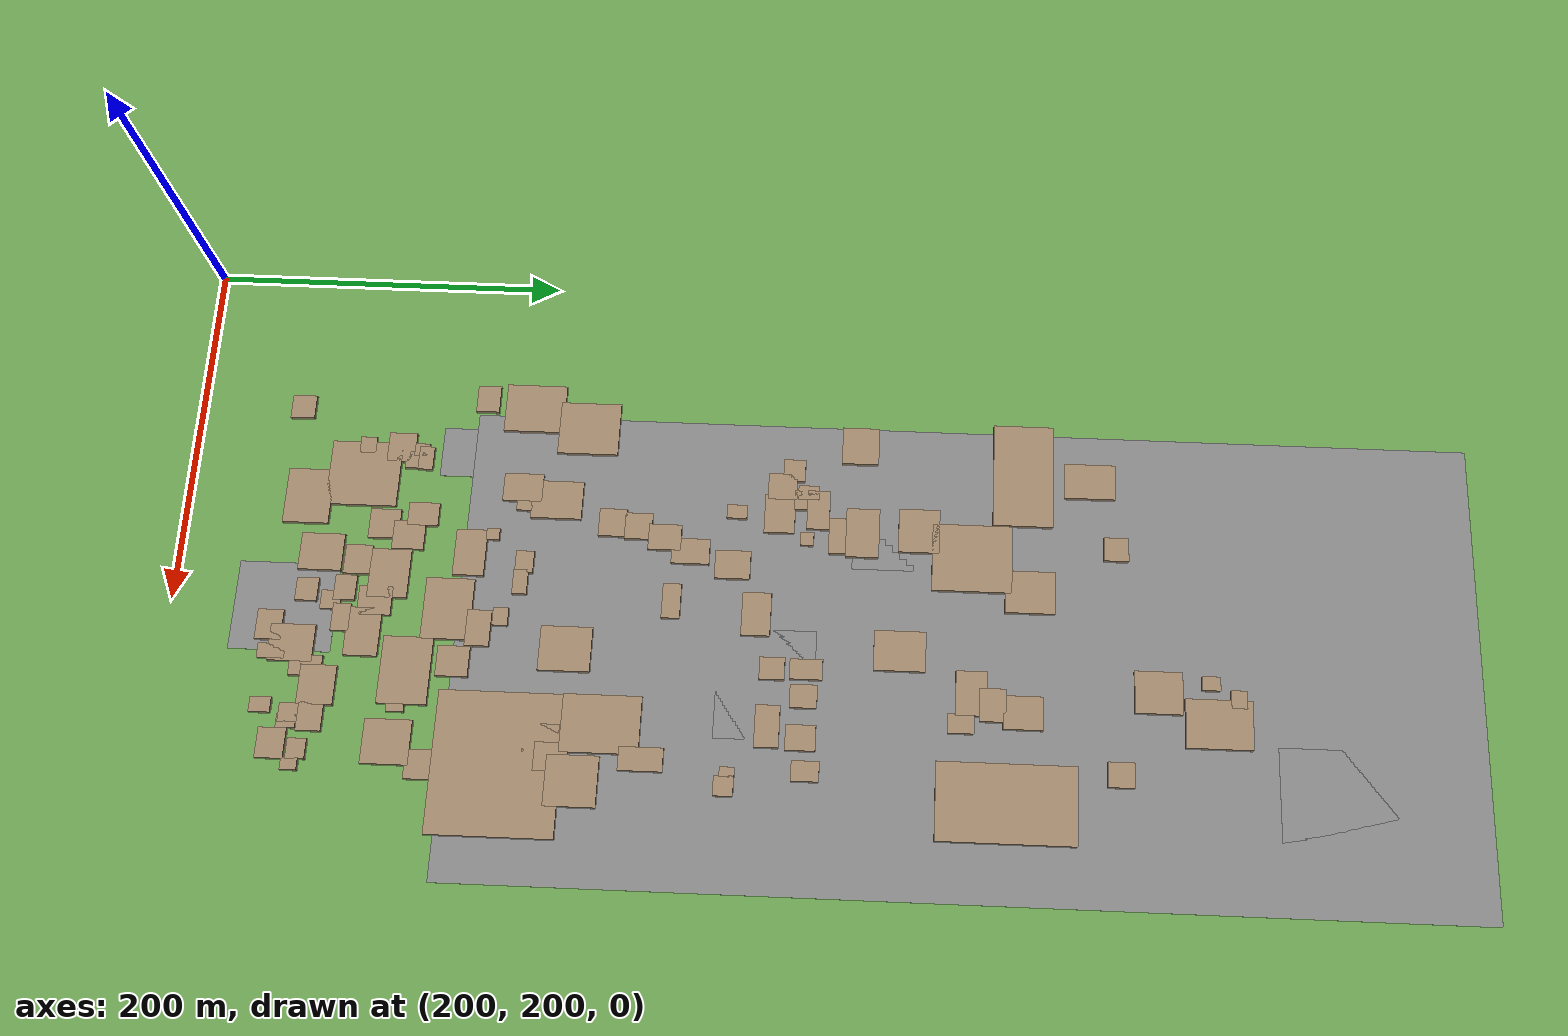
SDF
<sdf version="1.9">
 <world name="kimje_farmland">
  <model name="ground_plane">
   <static>true</static>
   <link name="link">
    <collision name="collision">
     <geometry><plane><normal>0 0 1</normal><size>2000 2000</size></plane></geometry>
    </collision>
    <visual name="visual">
     <geometry><plane><normal>0 0 1</normal><size>2000 2000</size></plane></geometry>
     <material><ambient>0.4 0.6 0.3 1</ambient><diffuse>0.4 0.6 0.3 1</diffuse></material>
    </visual>
   </link>
  </model>
  <model name="osm_12">
   <static>true</static>
   <pose>416.88 645.44 0.040 0 0 0</pose>
   <link name="link">
    <collision name="collision"><geometry><box><size>270.00 569.35 0.080</size></box></geometry></collision>
    <visual name="visual">
     <geometry><box><size>270.00 569.35 0.080</size></box></geometry>
     <material><ambient>0.5 0.5 0.5 1</ambient><diffuse>0.5 0.5 0.5 1</diffuse></material>
    </visual>
   </link>
  </model>
  <model name="osm_26">
   <static>true</static>
   <pose>436.03 534.62 0.040 0 0 0</pose>
   <link name="link">
    <collision name="collision"><geometry><box><size>62.67 54.41 0.080</size></box></geometry></collision>
    <visual name="visual">
     <geometry><box><size>62.67 54.41 0.080</size></box></geometry>
     <material><ambient>0.5 0.5 0.5 1</ambient><diffuse>0.5 0.5 0.5 1</diffuse></material>
    </visual>
   </link>
  </model>
  <model name="osm_31">
   <static>true</static>
   <pose>402.13 263.94 0.040 0 0 0</pose>
   <link name="link">
    <collision name="collision"><geometry><box><size>51.26 57.17 0.080</size></box></geometry></collision>
    <visual name="visual">
     <geometry><box><size>51.26 57.17 0.080</size></box></geometry>
     <material><ambient>0.5 0.5 0.5 1</ambient><diffuse>0.5 0.5 0.5 1</diffuse></material>
    </visual>
   </link>
  </model>
  <model name="osm_67">
   <static>true</static>
   <pose>490.43 868.63 0.040 0 0 0</pose>
   <link name="link">
    <collision name="collision"><geometry><box><size>60.84 105.36 0.080</size></box></geometry></collision>
    <visual name="visual">
     <geometry><box><size>60.84 105.36 0.080</size></box></geometry>
     <material><ambient>0.5 0.5 0.5 1</ambient><diffuse>0.5 0.5 0.5 1</diffuse></material>
    </visual>
   </link>
  </model>
  <model name="osm_97">
   <static>true</static>
   <pose>416.93 818.05 0.040 0 0 0</pose>
   <link name="link">
    <collision name="collision"><geometry><box><size>69.04 121.03 0.080</size></box></geometry></collision>
    <visual name="visual">
     <geometry><box><size>69.04 121.03 0.080</size></box></geometry>
     <material><ambient>0.5 0.5 0.5 1</ambient><diffuse>0.5 0.5 0.5 1</diffuse></material>
    </visual>
   </link>
  </model>
  <model name="osm_126">
   <static>true</static>
   <pose>305.71 356.47 0.040 0 0 0</pose>
   <link name="link">
    <collision name="collision"><geometry><box><size>29.51 29.51 0.080</size></box></geometry></collision>
    <visual name="visual">
     <geometry><box><size>29.51 29.51 0.080</size></box></geometry>
     <material><ambient>0.5 0.5 0.5 1</ambient><diffuse>0.5 0.5 0.5 1</diffuse></material>
    </visual>
   </link>
  </model>
  <model name="osm_953">
   <static>true</static>
   <pose>307.98 675.98 1.500 0 0 0</pose>
   <link name="link">
    <collision name="collision"><geometry><box><size>61.12 33.99 3.000</size></box></geometry></collision>
    <visual name="visual">
     <geometry><box><size>61.12 33.99 3.000</size></box></geometry>
     <material><ambient>0.6 0.5 0.4 1</ambient><diffuse>0.6 0.5 0.4 1</diffuse></material>
    </visual>
   </link>
  </model>
  <model name="osm_954">
   <static>true</static>
   <pose>309.95 713.95 1.500 0 0 0</pose>
   <link name="link">
    <collision name="collision"><geometry><box><size>20.83 28.83 3.000</size></box></geometry></collision>
    <visual name="visual">
     <geometry><box><size>20.83 28.83 3.000</size></box></geometry>
     <material><ambient>0.6 0.5 0.4 1</ambient><diffuse>0.6 0.5 0.4 1</diffuse></material>
    </visual>
   </link>
  </model>
  <model name="osm_955">
   <static>true</static>
   <pose>350.32 728.66 1.500 0 0 0</pose>
   <link name="link">
    <collision name="collision"><geometry><box><size>13.75 13.85 3.000</size></box></geometry></collision>
    <visual name="visual">
     <geometry><box><size>13.75 13.85 3.000</size></box></geometry>
     <material><ambient>0.6 0.5 0.4 1</ambient><diffuse>0.6 0.5 0.4 1</diffuse></material>
    </visual>
   </link>
  </model>
  <model name="osm_956">
   <static>true</static>
   <pose>432.56 751.01 1.500 0 0 0</pose>
   <link name="link">
    <collision name="collision"><geometry><box><size>23.93 26.43 3.000</size></box></geometry></collision>
    <visual name="visual">
     <geometry><box><size>23.93 26.43 3.000</size></box></geometry>
     <material><ambient>0.6 0.5 0.4 1</ambient><diffuse>0.6 0.5 0.4 1</diffuse></material>
    </visual>
   </link>
  </model>
  <model name="osm_957">
   <static>true</static>
   <pose>377.65 680.20 1.500 0 0 0</pose>
   <link name="link">
    <collision name="collision"><geometry><box><size>24.54 27.86 3.000</size></box></geometry></collision>
    <visual name="visual">
     <geometry><box><size>24.54 27.86 3.000</size></box></geometry>
     <material><ambient>0.6 0.5 0.4 1</ambient><diffuse>0.6 0.5 0.4 1</diffuse></material>
    </visual>
   </link>
  </model>
  <model name="osm_958">
   <static>true</static>
   <pose>479.28 730.09 1.500 0 0 0</pose>
   <link name="link">
    <collision name="collision"><geometry><box><size>14.04 14.74 3.000</size></box></geometry></collision>
    <visual name="visual">
     <geometry><box><size>14.04 14.74 3.000</size></box></geometry>
     <material><ambient>0.6 0.5 0.4 1</ambient><diffuse>0.6 0.5 0.4 1</diffuse></material>
    </visual>
   </link>
  </model>
  <model name="osm_959">
   <static>true</static>
   <pose>497.43 667.88 1.500 0 0 0</pose>
   <link name="link">
    <collision name="collision"><geometry><box><size>43.59 76.94 3.000</size></box></geometry></collision>
    <visual name="visual">
     <geometry><box><size>43.59 76.94 3.000</size></box></geometry>
     <material><ambient>0.6 0.5 0.4 1</ambient><diffuse>0.6 0.5 0.4 1</diffuse></material>
    </visual>
   </link>
  </model>
  <model name="osm_960">
   <static>true</static>
   <pose>447.04 676.75 1.500 0 0 0</pose>
   <link name="link">
    <collision name="collision"><geometry><box><size>18.89 22.01 3.000</size></box></geometry></collision>
    <visual name="visual">
     <geometry><box><size>18.89 22.01 3.000</size></box></geometry>
     <material><ambient>0.6 0.5 0.4 1</ambient><diffuse>0.6 0.5 0.4 1</diffuse></material>
    </visual>
   </link>
  </model>
  <model name="osm_961">
   <static>true</static>
   <pose>443.35 659.92 1.500 0 0 0</pose>
   <link name="link">
    <collision name="collision"><geometry><box><size>18.72 14.42 3.000</size></box></geometry></collision>
    <visual name="visual">
     <geometry><box><size>18.72 14.42 3.000</size></box></geometry>
     <material><ambient>0.6 0.5 0.4 1</ambient><diffuse>0.6 0.5 0.4 1</diffuse></material>
    </visual>
   </link>
  </model>
  <model name="osm_962">
   <static>true</static>
   <pose>437.18 648.13 1.500 0 0 0</pose>
   <link name="link">
    <collision name="collision"><geometry><box><size>25.18 17.19 3.000</size></box></geometry></collision>
    <visual name="visual">
     <geometry><box><size>25.18 17.19 3.000</size></box></geometry>
     <material><ambient>0.6 0.5 0.4 1</ambient><diffuse>0.6 0.5 0.4 1</diffuse></material>
    </visual>
   </link>
  </model>
  <model name="osm_963">
   <static>true</static>
   <pose>454.51 642.64 1.500 0 0 0</pose>
   <link name="link">
    <collision name="collision"><geometry><box><size>10.80 14.58 3.000</size></box></geometry></collision>
    <visual name="visual">
     <geometry><box><size>10.80 14.58 3.000</size></box></geometry>
     <material><ambient>0.6 0.5 0.4 1</ambient><diffuse>0.6 0.5 0.4 1</diffuse></material>
    </visual>
   </link>
  </model>
  <model name="osm_976">
   <static>true</static>
   <pose>414.72 608.22 1.500 0 0 0</pose>
   <link name="link">
    <collision name="collision"><geometry><box><size>22.95 28.77 3.000</size></box></geometry></collision>
    <visual name="visual">
     <geometry><box><size>22.95 28.77 3.000</size></box></geometry>
     <material><ambient>0.6 0.5 0.4 1</ambient><diffuse>0.6 0.5 0.4 1</diffuse></material>
    </visual>
   </link>
  </model>
  <model name="osm_977">
   <static>true</static>
   <pose>484.27 558.76 1.500 0 0 0</pose>
   <link name="link">
    <collision name="collision"><geometry><box><size>11.33 15.31 3.000</size></box></geometry></collision>
    <visual name="visual">
     <geometry><box><size>11.33 15.31 3.000</size></box></geometry>
     <material><ambient>0.6 0.5 0.4 1</ambient><diffuse>0.6 0.5 0.4 1</diffuse></material>
    </visual>
   </link>
  </model>
  <model name="osm_983">
   <static>true</static>
   <pose>465.92 555.44 1.500 0 0 0</pose>
   <link name="link">
    <collision name="collision"><geometry><box><size>14.37 16.61 3.000</size></box></geometry></collision>
    <visual name="visual">
     <geometry><box><size>14.37 16.61 3.000</size></box></geometry>
     <material><ambient>0.6 0.5 0.4 1</ambient><diffuse>0.6 0.5 0.4 1</diffuse></material>
    </visual>
   </link>
  </model>
  <model name="osm_984">
   <static>true</static>
   <pose>460.20 536.94 1.500 0 0 0</pose>
   <link name="link">
    <collision name="collision"><geometry><box><size>23.72 13.56 3.000</size></box></geometry></collision>
    <visual name="visual">
     <geometry><box><size>23.72 13.56 3.000</size></box></geometry>
     <material><ambient>0.6 0.5 0.4 1</ambient><diffuse>0.6 0.5 0.4 1</diffuse></material>
    </visual>
   </link>
  </model>
  <model name="osm_985">
   <static>true</static>
   <pose>442.62 556.07 1.500 0 0 0</pose>
   <link name="link">
    <collision name="collision"><geometry><box><size>13.19 15.11 3.000</size></box></geometry></collision>
    <visual name="visual">
     <geometry><box><size>13.19 15.11 3.000</size></box></geometry>
     <material><ambient>0.6 0.5 0.4 1</ambient><diffuse>0.6 0.5 0.4 1</diffuse></material>
    </visual>
   </link>
  </model>
  <model name="osm_986">
   <static>true</static>
   <pose>427.31 556.88 1.500 0 0 0</pose>
   <link name="link">
    <collision name="collision"><geometry><box><size>11.51 18.20 3.000</size></box></geometry></collision>
    <visual name="visual">
     <geometry><box><size>11.51 18.20 3.000</size></box></geometry>
     <material><ambient>0.6 0.5 0.4 1</ambient><diffuse>0.6 0.5 0.4 1</diffuse></material>
    </visual>
   </link>
  </model>
  <model name="osm_987">
   <static>true</static>
   <pose>427.54 538.06 1.500 0 0 0</pose>
   <link name="link">
    <collision name="collision"><geometry><box><size>12.62 14.00 3.000</size></box></geometry></collision>
    <visual name="visual">
     <geometry><box><size>12.62 14.00 3.000</size></box></geometry>
     <material><ambient>0.6 0.5 0.4 1</ambient><diffuse>0.6 0.5 0.4 1</diffuse></material>
    </visual>
   </link>
  </model>
  <model name="osm_988">
   <static>true</static>
   <pose>358.87 647.41 1.500 0 0 0</pose>
   <link name="link">
    <collision name="collision"><geometry><box><size>39.37 44.88 3.000</size></box></geometry></collision>
    <visual name="visual">
     <geometry><box><size>39.37 44.88 3.000</size></box></geometry>
     <material><ambient>0.6 0.5 0.4 1</ambient><diffuse>0.6 0.5 0.4 1</diffuse></material>
    </visual>
   </link>
  </model>
  <model name="osm_989">
   <static>true</static>
   <pose>343.81 617.24 1.500 0 0 0</pose>
   <link name="link">
    <collision name="collision"><geometry><box><size>25.74 23.10 3.000</size></box></geometry></collision>
    <visual name="visual">
     <geometry><box><size>25.74 23.10 3.000</size></box></geometry>
     <material><ambient>0.6 0.5 0.4 1</ambient><diffuse>0.6 0.5 0.4 1</diffuse></material>
    </visual>
   </link>
  </model>
  <model name="osm_990">
   <static>true</static>
   <pose>346.30 585.27 1.500 0 0 0</pose>
   <link name="link">
    <collision name="collision"><geometry><box><size>28.88 18.79 3.000</size></box></geometry></collision>
    <visual name="visual">
     <geometry><box><size>28.88 18.79 3.000</size></box></geometry>
     <material><ambient>0.6 0.5 0.4 1</ambient><diffuse>0.6 0.5 0.4 1</diffuse></material>
    </visual>
   </link>
  </model>
  <model name="osm_991">
   <static>true</static>
   <pose>348.70 573.06 1.500 0 0 0</pose>
   <link name="link">
    <collision name="collision"><geometry><box><size>20.95 13.68 3.000</size></box></geometry></collision>
    <visual name="visual">
     <geometry><box><size>20.95 13.68 3.000</size></box></geometry>
     <material><ambient>0.6 0.5 0.4 1</ambient><diffuse>0.6 0.5 0.4 1</diffuse></material>
    </visual>
   </link>
  </model>
  <model name="osm_992">
   <static>true</static>
   <pose>293.38 582.52 1.500 0 0 0</pose>
   <link name="link">
    <collision name="collision"><geometry><box><size>22.13 20.95 3.000</size></box></geometry></collision>
    <visual name="visual">
     <geometry><box><size>22.13 20.95 3.000</size></box></geometry>
     <material><ambient>0.6 0.5 0.4 1</ambient><diffuse>0.6 0.5 0.4 1</diffuse></material>
    </visual>
   </link>
  </model>
  <model name="osm_1002">
   <static>true</static>
   <pose>309.95 545.16 1.500 0 0 0</pose>
   <link name="link">
    <collision name="collision"><geometry><box><size>13.03 12.42 3.000</size></box></geometry></collision>
    <visual name="visual">
     <geometry><box><size>13.03 12.42 3.000</size></box></geometry>
     <material><ambient>0.6 0.5 0.4 1</ambient><diffuse>0.6 0.5 0.4 1</diffuse></material>
    </visual>
   </link>
  </model>
  <model name="osm_1003">
   <static>true</static>
   <pose>320.05 538.91 1.500 0 0 0</pose>
   <link name="link">
    <collision name="collision"><geometry><box><size>15.47 16.46 3.000</size></box></geometry></collision>
    <visual name="visual">
     <geometry><box><size>15.47 16.46 3.000</size></box></geometry>
     <material><ambient>0.6 0.5 0.4 1</ambient><diffuse>0.6 0.5 0.4 1</diffuse></material>
    </visual>
   </link>
  </model>
  <model name="osm_1004">
   <static>true</static>
   <pose>336.72 537.96 1.500 0 0 0</pose>
   <link name="link">
    <collision name="collision"><geometry><box><size>22.62 17.28 3.000</size></box></geometry></collision>
    <visual name="visual">
     <geometry><box><size>22.62 17.28 3.000</size></box></geometry>
     <material><ambient>0.6 0.5 0.4 1</ambient><diffuse>0.6 0.5 0.4 1</diffuse></material>
    </visual>
   </link>
  </model>
  <model name="osm_1005">
   <static>true</static>
   <pose>323.20 553.82 1.500 0 0 0</pose>
   <link name="link">
    <collision name="collision"><geometry><box><size>8.33 11.71 3.000</size></box></geometry></collision>
    <visual name="visual">
     <geometry><box><size>8.33 11.71 3.000</size></box></geometry>
     <material><ambient>0.6 0.5 0.4 1</ambient><diffuse>0.6 0.5 0.4 1</diffuse></material>
    </visual>
   </link>
  </model>
  <model name="osm_1006">
   <static>true</static>
   <pose>328.00 553.64 1.500 0 0 0</pose>
   <link name="link">
    <collision name="collision"><geometry><box><size>11.33 15.21 3.000</size></box></geometry></collision>
    <visual name="visual">
     <geometry><box><size>11.33 15.21 3.000</size></box></geometry>
     <material><ambient>0.6 0.5 0.4 1</ambient><diffuse>0.6 0.5 0.4 1</diffuse></material>
    </visual>
   </link>
  </model>
  <model name="osm_1007">
   <static>true</static>
   <pose>333.48 559.82 1.500 0 0 0</pose>
   <link name="link">
    <collision name="collision"><geometry><box><size>23.07 12.76 3.000</size></box></geometry></collision>
    <visual name="visual">
     <geometry><box><size>23.07 12.76 3.000</size></box></geometry>
     <material><ambient>0.6 0.5 0.4 1</ambient><diffuse>0.6 0.5 0.4 1</diffuse></material>
    </visual>
   </link>
  </model>
  <model name="osm_1008">
   <static>true</static>
   <pose>351.14 553.98 1.500 0 0 0</pose>
   <link name="link">
    <collision name="collision"><geometry><box><size>7.49 7.66 3.000</size></box></geometry></collision>
    <visual name="visual">
     <geometry><box><size>7.49 7.66 3.000</size></box></geometry>
     <material><ambient>0.6 0.5 0.4 1</ambient><diffuse>0.6 0.5 0.4 1</diffuse></material>
    </visual>
   </link>
  </model>
  <model name="osm_1009">
   <static>true</static>
   <pose>336.31 513.63 1.500 0 0 0</pose>
   <link name="link">
    <collision name="collision"><geometry><box><size>7.99 11.37 3.000</size></box></geometry></collision>
    <visual name="visual">
     <geometry><box><size>7.99 11.37 3.000</size></box></geometry>
     <material><ambient>0.6 0.5 0.4 1</ambient><diffuse>0.6 0.5 0.4 1</diffuse></material>
    </visual>
   </link>
  </model>
  <model name="osm_1010">
   <static>true</static>
   <pose>396.62 527.72 1.500 0 0 0</pose>
   <link name="link">
    <collision name="collision"><geometry><box><size>24.94 16.23 3.000</size></box></geometry></collision>
    <visual name="visual">
     <geometry><box><size>24.94 16.23 3.000</size></box></geometry>
     <material><ambient>0.6 0.5 0.4 1</ambient><diffuse>0.6 0.5 0.4 1</diffuse></material>
    </visual>
   </link>
  </model>
  <model name="osm_1011">
   <static>true</static>
   <pose>368.16 512.89 1.500 0 0 0</pose>
   <link name="link">
    <collision name="collision"><geometry><box><size>16.55 20.06 3.000</size></box></geometry></collision>
    <visual name="visual">
     <geometry><box><size>16.55 20.06 3.000</size></box></geometry>
     <material><ambient>0.6 0.5 0.4 1</ambient><diffuse>0.6 0.5 0.4 1</diffuse></material>
    </visual>
   </link>
  </model>
  <model name="osm_1012">
   <static>true</static>
   <pose>361.16 488.75 1.500 0 0 0</pose>
   <link name="link">
    <collision name="collision"><geometry><box><size>14.82 21.50 3.000</size></box></geometry></collision>
    <visual name="visual">
     <geometry><box><size>14.82 21.50 3.000</size></box></geometry>
     <material><ambient>0.6 0.5 0.4 1</ambient><diffuse>0.6 0.5 0.4 1</diffuse></material>
    </visual>
   </link>
  </model>
  <model name="osm_1014">
   <static>true</static>
   <pose>486.39 516.53 1.500 0 0 0</pose>
   <link name="link">
    <collision name="collision"><geometry><box><size>5.47 8.24 3.000</size></box></geometry></collision>
    <visual name="visual">
     <geometry><box><size>5.47 8.24 3.000</size></box></geometry>
     <material><ambient>0.6 0.5 0.4 1</ambient><diffuse>0.6 0.5 0.4 1</diffuse></material>
    </visual>
   </link>
  </model>
  <model name="osm_1015">
   <static>true</static>
   <pose>494.08 515.02 1.500 0 0 0</pose>
   <link name="link">
    <collision name="collision"><geometry><box><size>11.21 10.98 3.000</size></box></geometry></collision>
    <visual name="visual">
     <geometry><box><size>11.21 10.98 3.000</size></box></geometry>
     <material><ambient>0.6 0.5 0.4 1</ambient><diffuse>0.6 0.5 0.4 1</diffuse></material>
    </visual>
   </link>
  </model>
  <model name="osm_1036">
   <static>true</static>
   <pose>494.80 432.79 1.500 0 0 0</pose>
   <link name="link">
    <collision name="collision"><geometry><box><size>28.37 28.78 3.000</size></box></geometry></collision>
    <visual name="visual">
     <geometry><box><size>28.37 28.78 3.000</size></box></geometry>
     <material><ambient>0.6 0.5 0.4 1</ambient><diffuse>0.6 0.5 0.4 1</diffuse></material>
    </visual>
   </link>
  </model>
  <model name="osm_1037">
   <static>true</static>
   <pose>481.34 469.42 1.500 0 0 0</pose>
   <link name="link">
    <collision name="collision"><geometry><box><size>13.26 24.46 3.000</size></box></geometry></collision>
    <visual name="visual">
     <geometry><box><size>13.26 24.46 3.000</size></box></geometry>
     <material><ambient>0.6 0.5 0.4 1</ambient><diffuse>0.6 0.5 0.4 1</diffuse></material>
    </visual>
   </link>
  </model>
  <model name="osm_1038">
   <static>true</static>
   <pose>462.76 446.24 1.500 0 0 0</pose>
   <link name="link">
    <collision name="collision"><geometry><box><size>32.51 43.46 3.000</size></box></geometry></collision>
    <visual name="visual">
     <geometry><box><size>32.51 43.46 3.000</size></box></geometry>
     <material><ambient>0.6 0.5 0.4 1</ambient><diffuse>0.6 0.5 0.4 1</diffuse></material>
    </visual>
   </link>
  </model>
  <model name="osm_1039">
   <static>true</static>
   <pose>481.95 420.62 1.500 0 0 0</pose>
   <link name="link">
    <collision name="collision"><geometry><box><size>15.82 18.58 3.000</size></box></geometry></collision>
    <visual name="visual">
     <geometry><box><size>15.82 18.58 3.000</size></box></geometry>
     <material><ambient>0.6 0.5 0.4 1</ambient><diffuse>0.6 0.5 0.4 1</diffuse></material>
    </visual>
   </link>
  </model>
  <model name="osm_1040">
   <static>true</static>
   <pose>471.88 414.25 1.500 0 0 0</pose>
   <link name="link">
    <collision name="collision"><geometry><box><size>15.78 19.40 3.000</size></box></geometry></collision>
    <visual name="visual">
     <geometry><box><size>15.78 19.40 3.000</size></box></geometry>
     <material><ambient>0.6 0.5 0.4 1</ambient><diffuse>0.6 0.5 0.4 1</diffuse></material>
    </visual>
   </link>
  </model>
  <model name="osm_1041">
   <static>true</static>
   <pose>421.03 423.14 1.500 0 0 0</pose>
   <link name="link">
    <collision name="collision"><geometry><box><size>25.56 28.92 3.000</size></box></geometry></collision>
    <visual name="visual">
     <geometry><box><size>25.56 28.92 3.000</size></box></geometry>
     <material><ambient>0.6 0.5 0.4 1</ambient><diffuse>0.6 0.5 0.4 1</diffuse></material>
    </visual>
   </link>
  </model>
  <model name="osm_1042">
   <static>true</static>
   <pose>390.90 479.89 1.500 0 0 0</pose>
   <link name="link">
    <collision name="collision"><geometry><box><size>20.11 10.40 3.000</size></box></geometry></collision>
    <visual name="visual">
     <geometry><box><size>20.11 10.40 3.000</size></box></geometry>
     <material><ambient>0.6 0.5 0.4 1</ambient><diffuse>0.6 0.5 0.4 1</diffuse></material>
    </visual>
   </link>
  </model>
  <model name="osm_1043">
   <static>true</static>
   <pose>353.34 473.67 1.500 0 0 0</pose>
   <link name="link">
    <collision name="collision"><geometry><box><size>15.05 18.56 3.000</size></box></geometry></collision>
    <visual name="visual">
     <geometry><box><size>15.05 18.56 3.000</size></box></geometry>
     <material><ambient>0.6 0.5 0.4 1</ambient><diffuse>0.6 0.5 0.4 1</diffuse></material>
    </visual>
   </link>
  </model>
  <model name="osm_1044">
   <static>true</static>
   <pose>347.37 458.36 1.500 0 0 0</pose>
   <link name="link">
    <collision name="collision"><geometry><box><size>15.46 15.55 3.000</size></box></geometry></collision>
    <visual name="visual">
     <geometry><box><size>15.46 15.55 3.000</size></box></geometry>
     <material><ambient>0.6 0.5 0.4 1</ambient><diffuse>0.6 0.5 0.4 1</diffuse></material>
    </visual>
   </link>
  </model>
  <model name="osm_1045">
   <static>true</static>
   <pose>345.82 443.50 1.500 0 0 0</pose>
   <link name="link">
    <collision name="collision"><geometry><box><size>16.34 15.63 3.000</size></box></geometry></collision>
    <visual name="visual">
     <geometry><box><size>16.34 15.63 3.000</size></box></geometry>
     <material><ambient>0.6 0.5 0.4 1</ambient><diffuse>0.6 0.5 0.4 1</diffuse></material>
    </visual>
   </link>
  </model>
  <model name="osm_1046">
   <static>true</static>
   <pose>333.43 410.92 1.500 0 0 0</pose>
   <link name="link">
    <collision name="collision"><geometry><box><size>22.44 28.88 3.000</size></box></geometry></collision>
    <visual name="visual">
     <geometry><box><size>22.44 28.88 3.000</size></box></geometry>
     <material><ambient>0.6 0.5 0.4 1</ambient><diffuse>0.6 0.5 0.4 1</diffuse></material>
    </visual>
   </link>
  </model>
  <model name="osm_1047">
   <static>true</static>
   <pose>371.24 395.78 1.500 0 0 0</pose>
   <link name="link">
    <collision name="collision"><geometry><box><size>12.61 10.24 3.000</size></box></geometry></collision>
    <visual name="visual">
     <geometry><box><size>12.61 10.24 3.000</size></box></geometry>
     <material><ambient>0.6 0.5 0.4 1</ambient><diffuse>0.6 0.5 0.4 1</diffuse></material>
    </visual>
   </link>
  </model>
  <model name="osm_1048">
   <static>true</static>
   <pose>383.19 394.39 1.500 0 0 0</pose>
   <link name="link">
    <collision name="collision"><geometry><box><size>14.27 8.29 3.000</size></box></geometry></collision>
    <visual name="visual">
     <geometry><box><size>14.27 8.29 3.000</size></box></geometry>
     <material><ambient>0.6 0.5 0.4 1</ambient><diffuse>0.6 0.5 0.4 1</diffuse></material>
    </visual>
   </link>
  </model>
  <model name="osm_1049">
   <static>true</static>
   <pose>288.93 425.62 1.500 0 0 0</pose>
   <link name="link">
    <collision name="collision"><geometry><box><size>31.37 34.74 3.000</size></box></geometry></collision>
    <visual name="visual">
     <geometry><box><size>31.37 34.74 3.000</size></box></geometry>
     <material><ambient>0.6 0.5 0.4 1</ambient><diffuse>0.6 0.5 0.4 1</diffuse></material>
    </visual>
   </link>
  </model>
  <model name="osm_1064">
   <static>true</static>
   <pose>277.64 393.34 1.500 0 0 0</pose>
   <link name="link">
    <collision name="collision"><geometry><box><size>28.82 34.62 3.000</size></box></geometry></collision>
    <visual name="visual">
     <geometry><box><size>28.82 34.62 3.000</size></box></geometry>
     <material><ambient>0.6 0.5 0.4 1</ambient><diffuse>0.6 0.5 0.4 1</diffuse></material>
    </visual>
   </link>
  </model>
  <model name="osm_1065">
   <static>true</static>
   <pose>326.60 390.81 1.500 0 0 0</pose>
   <link name="link">
    <collision name="collision"><geometry><box><size>16.47 22.40 3.000</size></box></geometry></collision>
    <visual name="visual">
     <geometry><box><size>16.47 22.40 3.000</size></box></geometry>
     <material><ambient>0.6 0.5 0.4 1</ambient><diffuse>0.6 0.5 0.4 1</diffuse></material>
    </visual>
   </link>
  </model>
  <model name="osm_1066">
   <static>true</static>
   <pose>335.85 392.52 1.500 0 0 0</pose>
   <link name="link">
    <collision name="collision"><geometry><box><size>9.23 8.67 3.000</size></box></geometry></collision>
    <visual name="visual">
     <geometry><box><size>9.23 8.67 3.000</size></box></geometry>
     <material><ambient>0.6 0.5 0.4 1</ambient><diffuse>0.6 0.5 0.4 1</diffuse></material>
    </visual>
   </link>
  </model>
  <model name="osm_1067">
   <static>true</static>
   <pose>403.97 385.40 1.500 0 0 0</pose>
   <link name="link">
    <collision name="collision"><geometry><box><size>10.21 8.67 3.000</size></box></geometry></collision>
    <visual name="visual">
     <geometry><box><size>10.21 8.67 3.000</size></box></geometry>
     <material><ambient>0.6 0.5 0.4 1</ambient><diffuse>0.6 0.5 0.4 1</diffuse></material>
    </visual>
   </link>
  </model>
  <model name="osm_1083">
   <static>true</static>
   <pose>486.97 391.13 1.500 0 0 0</pose>
   <link name="link">
    <collision name="collision"><geometry><box><size>79.88 70.32 3.000</size></box></geometry></collision>
    <visual name="visual">
     <geometry><box><size>79.88 70.32 3.000</size></box></geometry>
     <material><ambient>0.6 0.5 0.4 1</ambient><diffuse>0.6 0.5 0.4 1</diffuse></material>
    </visual>
   </link>
  </model>
  <model name="osm_1086">
   <static>true</static>
   <pose>489.15 350.12 1.500 0 0 0</pose>
   <link name="link">
    <collision name="collision"><geometry><box><size>16.41 16.76 3.000</size></box></geometry></collision>
    <visual name="visual">
     <geometry><box><size>16.41 16.76 3.000</size></box></geometry>
     <material><ambient>0.6 0.5 0.4 1</ambient><diffuse>0.6 0.5 0.4 1</diffuse></material>
    </visual>
   </link>
  </model>
  <model name="osm_1088">
   <static>true</static>
   <pose>477.40 330.44 1.500 0 0 0</pose>
   <link name="link">
    <collision name="collision"><geometry><box><size>25.06 26.25 3.000</size></box></geometry></collision>
    <visual name="visual">
     <geometry><box><size>25.06 26.25 3.000</size></box></geometry>
     <material><ambient>0.6 0.5 0.4 1</ambient><diffuse>0.6 0.5 0.4 1</diffuse></material>
    </visual>
   </link>
  </model>
  <model name="osm_1089">
   <static>true</static>
   <pose>436.94 335.97 1.500 0 0 0</pose>
   <link name="link">
    <collision name="collision"><geometry><box><size>38.34 27.85 3.000</size></box></geometry></collision>
    <visual name="visual">
     <geometry><box><size>38.34 27.85 3.000</size></box></geometry>
     <material><ambient>0.6 0.5 0.4 1</ambient><diffuse>0.6 0.5 0.4 1</diffuse></material>
    </visual>
   </link>
  </model>
  <model name="osm_1090">
   <static>true</static>
   <pose>456.25 332.91 1.500 0 0 0</pose>
   <link name="link">
    <collision name="collision"><geometry><box><size>8.34 9.94 3.000</size></box></geometry></collision>
    <visual name="visual">
     <geometry><box><size>8.34 9.94 3.000</size></box></geometry>
     <material><ambient>0.6 0.5 0.4 1</ambient><diffuse>0.6 0.5 0.4 1</diffuse></material>
    </visual>
   </link>
  </model>
  <model name="osm_1091">
   <static>true</static>
   <pose>430.68 361.65 1.500 0 0 0</pose>
   <link name="link">
    <collision name="collision"><geometry><box><size>17.32 18.03 3.000</size></box></geometry></collision>
    <visual name="visual">
     <geometry><box><size>17.32 18.03 3.000</size></box></geometry>
     <material><ambient>0.6 0.5 0.4 1</ambient><diffuse>0.6 0.5 0.4 1</diffuse></material>
    </visual>
   </link>
  </model>
  <model name="osm_1092">
   <static>true</static>
   <pose>411.05 373.74 1.500 0 0 0</pose>
   <link name="link">
    <collision name="collision"><geometry><box><size>20.67 13.70 3.000</size></box></geometry></collision>
    <visual name="visual">
     <geometry><box><size>20.67 13.70 3.000</size></box></geometry>
     <material><ambient>0.6 0.5 0.4 1</ambient><diffuse>0.6 0.5 0.4 1</diffuse></material>
    </visual>
   </link>
  </model>
  <model name="osm_1093">
   <static>true</static>
   <pose>400.55 355.58 1.500 0 0 0</pose>
   <link name="link">
    <collision name="collision"><geometry><box><size>35.37 27.22 3.000</size></box></geometry></collision>
    <visual name="visual">
     <geometry><box><size>35.37 27.22 3.000</size></box></geometry>
     <material><ambient>0.6 0.5 0.4 1</ambient><diffuse>0.6 0.5 0.4 1</diffuse></material>
    </visual>
   </link>
  </model>
  <model name="osm_1094">
   <static>true</static>
   <pose>366.97 364.63 1.500 0 0 0</pose>
   <link name="link">
    <collision name="collision"><geometry><box><size>27.12 17.66 3.000</size></box></geometry></collision>
    <visual name="visual">
     <geometry><box><size>27.12 17.66 3.000</size></box></geometry>
     <material><ambient>0.6 0.5 0.4 1</ambient><diffuse>0.6 0.5 0.4 1</diffuse></material>
    </visual>
   </link>
  </model>
  <model name="osm_1095">
   <static>true</static>
   <pose>355.45 376.48 1.500 0 0 0</pose>
   <link name="link">
    <collision name="collision"><geometry><box><size>6.59 7.45 3.000</size></box></geometry></collision>
    <visual name="visual">
     <geometry><box><size>6.59 7.45 3.000</size></box></geometry>
     <material><ambient>0.6 0.5 0.4 1</ambient><diffuse>0.6 0.5 0.4 1</diffuse></material>
    </visual>
   </link>
  </model>
  <model name="osm_1096">
   <static>true</static>
   <pose>345.14 335.86 1.500 0 0 0</pose>
   <link name="link">
    <collision name="collision"><geometry><box><size>13.55 17.45 3.000</size></box></geometry></collision>
    <visual name="visual">
     <geometry><box><size>13.55 17.45 3.000</size></box></geometry>
     <material><ambient>0.6 0.5 0.4 1</ambient><diffuse>0.6 0.5 0.4 1</diffuse></material>
    </visual>
   </link>
  </model>
  <model name="osm_1097">
   <static>true</static>
   <pose>357.99 328.88 1.500 0 0 0</pose>
   <link name="link">
    <collision name="collision"><geometry><box><size>16.87 18.00 3.000</size></box></geometry></collision>
    <visual name="visual">
     <geometry><box><size>16.87 18.00 3.000</size></box></geometry>
     <material><ambient>0.6 0.5 0.4 1</ambient><diffuse>0.6 0.5 0.4 1</diffuse></material>
    </visual>
   </link>
  </model>
  <model name="osm_1098">
   <static>true</static>
   <pose>381.16 320.61 1.500 0 0 0</pose>
   <link name="link">
    <collision name="collision"><geometry><box><size>28.37 22.41 3.000</size></box></geometry></collision>
    <visual name="visual">
     <geometry><box><size>28.37 22.41 3.000</size></box></geometry>
     <material><ambient>0.6 0.5 0.4 1</ambient><diffuse>0.6 0.5 0.4 1</diffuse></material>
    </visual>
   </link>
  </model>
  <model name="osm_1099">
   <static>true</static>
   <pose>272.69 365.64 1.500 0 0 0</pose>
   <link name="link">
    <collision name="collision"><geometry><box><size>15.98 13.33 3.000</size></box></geometry></collision>
    <visual name="visual">
     <geometry><box><size>15.98 13.33 3.000</size></box></geometry>
     <material><ambient>0.6 0.5 0.4 1</ambient><diffuse>0.6 0.5 0.4 1</diffuse></material>
    </visual>
   </link>
  </model>
  <model name="osm_1108">
   <static>true</static>
   <pose>281.89 258.87 1.500 0 0 0</pose>
   <link name="link">
    <collision name="collision"><geometry><box><size>13.80 13.80 3.000</size></box></geometry></collision>
    <visual name="visual">
     <geometry><box><size>13.80 13.80 3.000</size></box></geometry>
     <material><ambient>0.6 0.5 0.4 1</ambient><diffuse>0.6 0.5 0.4 1</diffuse></material>
    </visual>
   </link>
  </model>
  <model name="osm_1112">
   <static>true</static>
   <pose>304.84 318.86 1.500 0 0 0</pose>
   <link name="link">
    <collision name="collision"><geometry><box><size>17.22 15.94 3.000</size></box></geometry></collision>
    <visual name="visual">
     <geometry><box><size>17.22 15.94 3.000</size></box></geometry>
     <material><ambient>0.6 0.5 0.4 1</ambient><diffuse>0.6 0.5 0.4 1</diffuse></material>
    </visual>
   </link>
  </model>
  <model name="osm_1113">
   <static>true</static>
   <pose>305.90 330.61 1.500 0 0 0</pose>
   <link name="link">
    <collision name="collision"><geometry><box><size>7.09 8.39 3.000</size></box></geometry></collision>
    <visual name="visual">
     <geometry><box><size>7.09 8.39 3.000</size></box></geometry>
     <material><ambient>0.6 0.5 0.4 1</ambient><diffuse>0.6 0.5 0.4 1</diffuse></material>
    </visual>
   </link>
  </model>
  <model name="osm_1114">
   <static>true</static>
   <pose>304.15 299.31 1.500 0 0 0</pose>
   <link name="link">
    <collision name="collision"><geometry><box><size>9.41 9.22 3.000</size></box></geometry></collision>
    <visual name="visual">
     <geometry><box><size>9.41 9.22 3.000</size></box></geometry>
     <material><ambient>0.6 0.5 0.4 1</ambient><diffuse>0.6 0.5 0.4 1</diffuse></material>
    </visual>
   </link>
  </model>
  <model name="osm_1115">
   <static>true</static>
   <pose>310.96 333.48 1.500 0 0 0</pose>
   <link name="link">
    <collision name="collision"><geometry><box><size>13.75 8.52 3.000</size></box></geometry></collision>
    <visual name="visual">
     <geometry><box><size>13.75 8.52 3.000</size></box></geometry>
     <material><ambient>0.6 0.5 0.4 1</ambient><diffuse>0.6 0.5 0.4 1</diffuse></material>
    </visual>
   </link>
  </model>
  <model name="osm_1116">
   <static>true</static>
   <pose>312.28 326.49 1.500 0 0 0</pose>
   <link name="link">
    <collision name="collision"><geometry><box><size>10.21 9.41 3.000</size></box></geometry></collision>
    <visual name="visual">
     <geometry><box><size>10.21 9.41 3.000</size></box></geometry>
     <material><ambient>0.6 0.5 0.4 1</ambient><diffuse>0.6 0.5 0.4 1</diffuse></material>
    </visual>
   </link>
  </model>
  <model name="osm_1117">
   <static>true</static>
   <pose>321.87 299.20 1.500 0 0 0</pose>
   <link name="link">
    <collision name="collision"><geometry><box><size>38.51 40.43 3.000</size></box></geometry></collision>
    <visual name="visual">
     <geometry><box><size>38.51 40.43 3.000</size></box></geometry>
     <material><ambient>0.6 0.5 0.4 1</ambient><diffuse>0.6 0.5 0.4 1</diffuse></material>
    </visual>
   </link>
  </model>
  <model name="osm_1118">
   <static>true</static>
   <pose>336.76 269.08 1.500 0 0 0</pose>
   <link name="link">
    <collision name="collision"><geometry><box><size>32.45 26.16 3.000</size></box></geometry></collision>
    <visual name="visual">
     <geometry><box><size>32.45 26.16 3.000</size></box></geometry>
     <material><ambient>0.6 0.5 0.4 1</ambient><diffuse>0.6 0.5 0.4 1</diffuse></material>
    </visual>
   </link>
  </model>
  <model name="osm_1120">
   <static>true</static>
   <pose>351.75 314.50 1.500 0 0 0</pose>
   <link name="link">
    <collision name="collision"><geometry><box><size>17.19 17.43 3.000</size></box></geometry></collision>
    <visual name="visual">
     <geometry><box><size>17.19 17.43 3.000</size></box></geometry>
     <material><ambient>0.6 0.5 0.4 1</ambient><diffuse>0.6 0.5 0.4 1</diffuse></material>
    </visual>
   </link>
  </model>
  <model name="osm_1121">
   <static>true</static>
   <pose>373.65 301.99 1.500 0 0 0</pose>
   <link name="link">
    <collision name="collision"><geometry><box><size>17.02 15.18 3.000</size></box></geometry></collision>
    <visual name="visual">
     <geometry><box><size>17.02 15.18 3.000</size></box></geometry>
     <material><ambient>0.6 0.5 0.4 1</ambient><diffuse>0.6 0.5 0.4 1</diffuse></material>
    </visual>
   </link>
  </model>
  <model name="osm_1122">
   <static>true</static>
   <pose>397.57 314.47 1.500 0 0 0</pose>
   <link name="link">
    <collision name="collision"><geometry><box><size>16.51 18.85 3.000</size></box></geometry></collision>
    <visual name="visual">
     <geometry><box><size>16.51 18.85 3.000</size></box></geometry>
     <material><ambient>0.6 0.5 0.4 1</ambient><diffuse>0.6 0.5 0.4 1</diffuse></material>
    </visual>
   </link>
  </model>
  <model name="osm_1123">
   <static>true</static>
   <pose>415.77 309.85 1.500 0 0 0</pose>
   <link name="link">
    <collision name="collision"><geometry><box><size>27.84 19.12 3.000</size></box></geometry></collision>
    <visual name="visual">
     <geometry><box><size>27.84 19.12 3.000</size></box></geometry>
     <material><ambient>0.6 0.5 0.4 1</ambient><diffuse>0.6 0.5 0.4 1</diffuse></material>
    </visual>
   </link>
  </model>
  <model name="osm_1124">
   <static>true</static>
   <pose>390.52 296.97 1.500 0 0 0</pose>
   <link name="link">
    <collision name="collision"><geometry><box><size>14.60 12.13 3.000</size></box></geometry></collision>
    <visual name="visual">
     <geometry><box><size>14.60 12.13 3.000</size></box></geometry>
     <material><ambient>0.6 0.5 0.4 1</ambient><diffuse>0.6 0.5 0.4 1</diffuse></material>
    </visual>
   </link>
  </model>
  <model name="osm_1125">
   <static>true</static>
   <pose>407.85 296.60 1.500 0 0 0</pose>
   <link name="link">
    <collision name="collision"><geometry><box><size>15.76 9.94 3.000</size></box></geometry></collision>
    <visual name="visual">
     <geometry><box><size>15.76 9.94 3.000</size></box></geometry>
     <material><ambient>0.6 0.5 0.4 1</ambient><diffuse>0.6 0.5 0.4 1</diffuse></material>
    </visual>
   </link>
  </model>
  <model name="osm_1126">
   <static>true</static>
   <pose>397.94 289.74 1.500 0 0 0</pose>
   <link name="link">
    <collision name="collision"><geometry><box><size>10.71 11.09 3.000</size></box></geometry></collision>
    <visual name="visual">
     <geometry><box><size>10.71 11.09 3.000</size></box></geometry>
     <material><ambient>0.6 0.5 0.4 1</ambient><diffuse>0.6 0.5 0.4 1</diffuse></material>
    </visual>
   </link>
  </model>
  <model name="osm_1127">
   <static>true</static>
   <pose>392.35 275.68 1.500 0 0 0</pose>
   <link name="link">
    <collision name="collision"><geometry><box><size>13.26 12.42 3.000</size></box></geometry></collision>
    <visual name="visual">
     <geometry><box><size>13.26 12.42 3.000</size></box></geometry>
     <material><ambient>0.6 0.5 0.4 1</ambient><diffuse>0.6 0.5 0.4 1</diffuse></material>
    </visual>
   </link>
  </model>
  <model name="osm_1128">
   <static>true</static>
   <pose>369.96 280.88 1.500 0 0 0</pose>
   <link name="link">
    <collision name="collision"><geometry><box><size>21.55 24.46 3.000</size></box></geometry></collision>
    <visual name="visual">
     <geometry><box><size>21.55 24.46 3.000</size></box></geometry>
     <material><ambient>0.6 0.5 0.4 1</ambient><diffuse>0.6 0.5 0.4 1</diffuse></material>
    </visual>
   </link>
  </model>
  <model name="osm_1129">
   <static>true</static>
   <pose>423.66 271.20 1.500 0 0 0</pose>
   <link name="link">
    <collision name="collision"><geometry><box><size>21.06 24.95 3.000</size></box></geometry></collision>
    <visual name="visual">
     <geometry><box><size>21.06 24.95 3.000</size></box></geometry>
     <material><ambient>0.6 0.5 0.4 1</ambient><diffuse>0.6 0.5 0.4 1</diffuse></material>
    </visual>
   </link>
  </model>
  <model name="osm_1130">
   <static>true</static>
   <pose>413.67 257.51 1.500 0 0 0</pose>
   <link name="link">
    <collision name="collision"><geometry><box><size>17.19 14.54 3.000</size></box></geometry></collision>
    <visual name="visual">
     <geometry><box><size>17.19 14.54 3.000</size></box></geometry>
     <material><ambient>0.6 0.5 0.4 1</ambient><diffuse>0.6 0.5 0.4 1</diffuse></material>
    </visual>
   </link>
  </model>
  <model name="osm_1132">
   <static>true</static>
   <pose>436.35 280.72 1.500 0 0 0</pose>
   <link name="link">
    <collision name="collision"><geometry><box><size>11.63 18.16 3.000</size></box></geometry></collision>
    <visual name="visual">
     <geometry><box><size>11.63 18.16 3.000</size></box></geometry>
     <material><ambient>0.6 0.5 0.4 1</ambient><diffuse>0.6 0.5 0.4 1</diffuse></material>
    </visual>
   </link>
  </model>
  <model name="osm_1133">
   <static>true</static>
   <pose>447.06 288.37 1.500 0 0 0</pose>
   <link name="link">
    <collision name="collision"><geometry><box><size>22.40 20.10 3.000</size></box></geometry></collision>
    <visual name="visual">
     <geometry><box><size>22.40 20.10 3.000</size></box></geometry>
     <material><ambient>0.6 0.5 0.4 1</ambient><diffuse>0.6 0.5 0.4 1</diffuse></material>
    </visual>
   </link>
  </model>
  <model name="osm_1134">
   <static>true</static>
   <pose>428.80 260.59 1.500 0 0 0</pose>
   <link name="link">
    <collision name="collision"><geometry><box><size>8.23 15.26 3.000</size></box></geometry></collision>
    <visual name="visual">
     <geometry><box><size>8.23 15.26 3.000</size></box></geometry>
     <material><ambient>0.6 0.5 0.4 1</ambient><diffuse>0.6 0.5 0.4 1</diffuse></material>
    </visual>
   </link>
  </model>
  <model name="osm_1136">
   <static>true</static>
   <pose>463.53 286.99 1.500 0 0 0</pose>
   <link name="link">
    <collision name="collision"><geometry><box><size>19.12 13.77 3.000</size></box></geometry></collision>
    <visual name="visual">
     <geometry><box><size>19.12 13.77 3.000</size></box></geometry>
     <material><ambient>0.6 0.5 0.4 1</ambient><diffuse>0.6 0.5 0.4 1</diffuse></material>
    </visual>
   </link>
  </model>
  <model name="osm_1137">
   <static>true</static>
   <pose>468.03 274.37 1.500 0 0 0</pose>
   <link name="link">
    <collision name="collision"><geometry><box><size>7.72 10.73 3.000</size></box></geometry></collision>
    <visual name="visual">
     <geometry><box><size>7.72 10.73 3.000</size></box></geometry>
     <material><ambient>0.6 0.5 0.4 1</ambient><diffuse>0.6 0.5 0.4 1</diffuse></material>
    </visual>
   </link>
  </model>
  <model name="osm_1138">
   <static>true</static>
   <pose>463.30 274.94 1.500 0 0 0</pose>
   <link name="link">
    <collision name="collision"><geometry><box><size>10.90 10.71 3.000</size></box></geometry></collision>
    <visual name="visual">
     <geometry><box><size>10.90 10.71 3.000</size></box></geometry>
     <material><ambient>0.6 0.5 0.4 1</ambient><diffuse>0.6 0.5 0.4 1</diffuse></material>
    </visual>
   </link>
  </model>
  <model name="osm_1139">
   <static>true</static>
   <pose>483.10 281.88 1.500 0 0 0</pose>
   <link name="link">
    <collision name="collision"><geometry><box><size>11.29 10.54 3.000</size></box></geometry></collision>
    <visual name="visual">
     <geometry><box><size>11.29 10.54 3.000</size></box></geometry>
     <material><ambient>0.6 0.5 0.4 1</ambient><diffuse>0.6 0.5 0.4 1</diffuse></material>
    </visual>
   </link>
  </model>
  <model name="osm_1140">
   <static>true</static>
   <pose>480.58 267.66 1.500 0 0 0</pose>
   <link name="link">
    <collision name="collision"><geometry><box><size>16.93 15.52 3.000</size></box></geometry></collision>
    <visual name="visual">
     <geometry><box><size>16.93 15.52 3.000</size></box></geometry>
     <material><ambient>0.6 0.5 0.4 1</ambient><diffuse>0.6 0.5 0.4 1</diffuse></material>
    </visual>
   </link>
  </model>
  <model name="osm_1141">
   <static>true</static>
   <pose>459.41 258.83 1.500 0 0 0</pose>
   <link name="link">
    <collision name="collision"><geometry><box><size>8.56 11.73 3.000</size></box></geometry></collision>
    <visual name="visual">
     <geometry><box><size>8.56 11.73 3.000</size></box></geometry>
     <material><ambient>0.6 0.5 0.4 1</ambient><diffuse>0.6 0.5 0.4 1</diffuse></material>
    </visual>
   </link>
  </model>
  <model name="osm_1145">
   <static>true</static>
   <pose>491.62 279.11 1.500 0 0 0</pose>
   <link name="link">
    <collision name="collision"><geometry><box><size>6.79 9.18 3.000</size></box></geometry></collision>
    <visual name="visual">
     <geometry><box><size>6.79 9.18 3.000</size></box></geometry>
     <material><ambient>0.6 0.5 0.4 1</ambient><diffuse>0.6 0.5 0.4 1</diffuse></material>
    </visual>
   </link>
  </model>
  <model name="osm_1155">
   <static>true</static>
   <pose>330.66 615.52 0.040 0 0 0</pose>
   <link name="link">
    <collision name="collision"><geometry><box><size>72.62 71.31 0.080</size></box></geometry></collision>
    <visual name="visual">
     <geometry><box><size>72.62 71.31 0.080</size></box></geometry>
     <material><ambient>0.5 0.5 0.5 1</ambient><diffuse>0.5 0.5 0.5 1</diffuse></material>
    </visual>
   </link>
  </model>
  <model name="osm_1526">
   <static>true</static>
   <pose>434.66 795.01 1.500 0 0 0</pose>
   <link name="link">
    <collision name="collision"><geometry><box><size>10.07 8.68 3.000</size></box></geometry></collision>
    <visual name="visual">
     <geometry><box><size>10.07 8.68 3.000</size></box></geometry>
     <material><ambient>0.6 0.5 0.4 1</ambient><diffuse>0.6 0.5 0.4 1</diffuse></material>
    </visual>
   </link>
  </model>
  <model name="osm_1527">
   <static>true</static>
   <pose>449.05 783.83 1.500 0 0 0</pose>
   <link name="link">
    <collision name="collision"><geometry><box><size>27.61 36.81 3.000</size></box></geometry></collision>
    <visual name="visual">
     <geometry><box><size>27.61 36.81 3.000</size></box></geometry>
     <material><ambient>0.6 0.5 0.4 1</ambient><diffuse>0.6 0.5 0.4 1</diffuse></material>
    </visual>
   </link>
  </model>
  <model name="osm_1533">
   <static>true</static>
   <pose>426.21 780.02 1.500 0 0 0</pose>
   <link name="link">
    <collision name="collision"><geometry><box><size>7.95 9.96 3.000</size></box></geometry></collision>
    <visual name="visual">
     <geometry><box><size>7.95 9.96 3.000</size></box></geometry>
     <material><ambient>0.6 0.5 0.4 1</ambient><diffuse>0.6 0.5 0.4 1</diffuse></material>
    </visual>
   </link>
  </model>
 </world>
</sdf>
